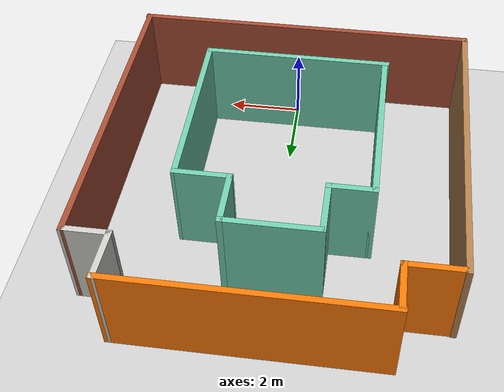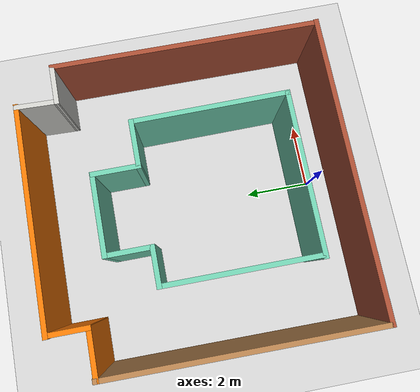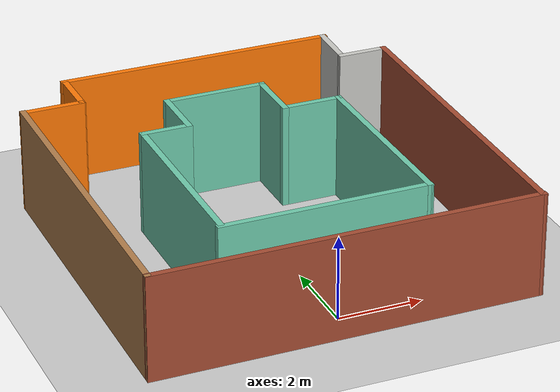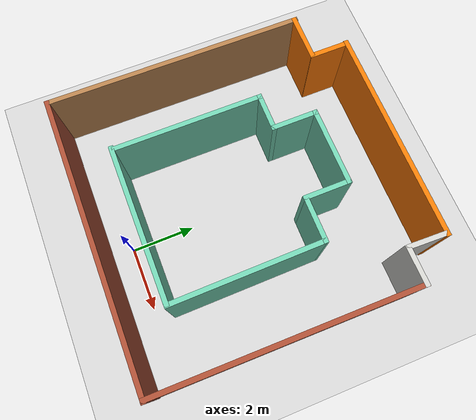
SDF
<sdf version="1.6">
 <world name="default">
  <light name="sun" type="directional">
   <pose>0 0 10 0 -0 0</pose>
   <diffuse>0.8 0.8 0.8 1</diffuse>
   <specular>0.2 0.2 0.2 1</specular>
   <attenuation>
    <range>1000</range>
    <constant>0.9</constant>
    <linear>0.01</linear>
    <quadratic>0.001</quadratic>
   </attenuation>
   <direction>-0.5 0.1 -0.9</direction>
  </light>
  <model name="ground_plane">
   <static>1</static>
   <link name="link">
    <collision name="collision">
     <geometry><plane><normal>0 0 1</normal><size>100 100</size></plane></geometry>
     <surface>
      <contact><collide_bitmask>65535</collide_bitmask></contact>
      <friction><ode><mu>100</mu><mu2>50</mu2></ode></friction>
     </surface>
    </collision>
    <visual name="visual">
     <cast_shadows>0</cast_shadows>
     <geometry><plane><normal>0 0 1</normal><size>100 100</size></plane></geometry>
     <material>
      <script><uri>file://media/materials/scripts/gazebo.material</uri><name>Gazebo/Grey</name></script>
     </material>
    </visual>
   </link>
  </model>
  <gravity>0 0 -9.8</gravity>
  <magnetic_field>6e-06 2.3e-05 -4.2e-05</magnetic_field>
  <atmosphere type="adiabatic"/>
  <physics name="default_physics" default="0" type="ode">
   <max_step_size>0.001</max_step_size>
   <real_time_factor>1</real_time_factor>
   <real_time_update_rate>1000</real_time_update_rate>
  </physics>
  <scene><ambient>0.4 0.4 0.4 1</ambient><background>0.7 0.7 0.7 1</background><shadows>1</shadows></scene>
  <spherical_coordinates>
   <surface_model>EARTH_WGS84</surface_model>
   <latitude_deg>0</latitude_deg>
   <longitude_deg>0</longitude_deg>
   <elevation>0</elevation>
   <heading_deg>0</heading_deg>
  </spherical_coordinates>
  <model name="walls">
   <pose>-0.051443 3.88798 0 0 -0 0</pose>
   <link name="Wall_12">
    <collision name="Wall_12_Collision">
     <geometry><box><size>5 0.15 2.5</size></box></geometry>
     <pose>0 0 1.25 0 -0 0</pose>
    </collision>
    <visual name="Wall_12_Visual">
     <pose>0 0 1.25 0 -0 0</pose>
     <geometry><box><size>5 0.15 2.5</size></box></geometry>
     <material>
      <script><uri>file://media/materials/scripts/gazebo.material</uri><name>Gazebo/Grey</name></script>
      <ambient>0.435294 0.796078 0.67451 1</ambient>
     </material>
     <meta><layer>0</layer></meta>
    </visual>
    <pose>0.011045 -3.29036 0 0 -0 0</pose>
   </link>
   <link name="Wall_13">
    <collision name="Wall_13_Collision">
     <geometry><box><size>4.83464 0.15 2.5</size></box></geometry>
     <pose>0 0 1.25 0 -0 0</pose>
    </collision>
    <visual name="Wall_13_Visual">
     <pose>0 0 1.25 0 -0 0</pose>
     <geometry><box><size>4.83464 0.15 2.5</size></box></geometry>
     <material>
      <script><uri>file://media/materials/scripts/gazebo.material</uri><name>Gazebo/Grey</name></script>
      <ambient>0.435294 0.796078 0.67451 1</ambient>
     </material>
     <meta><layer>0</layer></meta>
    </visual>
    <pose>2.4475 -0.948197 0 0 -0 1.57897</pose>
   </link>
   <link name="Wall_14">
    <collision name="Wall_14_Collision">
     <geometry><box><size>1.5 0.15 2.5</size></box></geometry>
     <pose>0 0 1.25 0 -0 0</pose>
    </collision>
    <visual name="Wall_14_Visual">
     <pose>0 0 1.25 0 -0 0</pose>
     <geometry><box><size>1.5 0.15 2.5</size></box></geometry>
     <material>
      <script><uri>file://media/materials/scripts/gazebo.material</uri><name>Gazebo/Grey</name></script>
      <ambient>0.435294 0.796078 0.67451 1</ambient>
     </material>
     <meta><layer>0</layer></meta>
    </visual>
    <pose>1.75337 1.39397 0 0 -0 3.14159</pose>
   </link>
   <link name="Wall_15">
    <collision name="Wall_15_Collision">
     <geometry><box><size>1.5 0.15 2.5</size></box></geometry>
     <pose>0 0 1.25 0 -0 0</pose>
    </collision>
    <visual name="Wall_15_Visual">
     <pose>0 0 1.25 0 -0 0</pose>
     <geometry><box><size>1.5 0.15 2.5</size></box></geometry>
     <material>
      <script><uri>file://media/materials/scripts/gazebo.material</uri><name>Gazebo/Grey</name></script>
      <ambient>0.435294 0.796078 0.67451 1</ambient>
     </material>
     <meta><layer>0</layer></meta>
    </visual>
    <pose>1.07837 2.06897 0 0 -0 1.5708</pose>
   </link>
   <link name="Wall_16">
    <collision name="Wall_16_Collision">
     <geometry><box><size>2.5 0.15 2.5</size></box></geometry>
     <pose>0 0 1.25 0 -0 0</pose>
    </collision>
    <visual name="Wall_16_Visual">
     <pose>0 0 1.25 0 -0 0</pose>
     <geometry><box><size>2.5 0.15 2.5</size></box></geometry>
     <material>
      <script><uri>file://media/materials/scripts/gazebo.material</uri><name>Gazebo/Grey</name></script>
      <ambient>0.435294 0.796078 0.67451 1</ambient>
     </material>
     <meta><layer>0</layer></meta>
    </visual>
    <pose>-0.096633 2.74397 0 0 -0 3.14159</pose>
   </link>
   <link name="Wall_17">
    <collision name="Wall_17_Collision">
     <geometry><box><size>1.5 0.15 2.5</size></box></geometry>
     <pose>0 0 1.25 0 -0 0</pose>
    </collision>
    <visual name="Wall_17_Visual">
     <pose>0 0 1.25 0 -0 0</pose>
     <geometry><box><size>1.5 0.15 2.5</size></box></geometry>
     <material>
      <script><uri>file://media/materials/scripts/gazebo.material</uri><name>Gazebo/Grey</name></script>
      <ambient>0.435294 0.796078 0.67451 1</ambient>
     </material>
     <meta><layer>0</layer></meta>
    </visual>
    <pose>-1.27163 2.06897 0 0 0 -1.5708</pose>
   </link>
   <link name="Wall_18">
    <collision name="Wall_18_Collision">
     <geometry><box><size>1.25 0.15 2.5</size></box></geometry>
     <pose>0 0 1.25 0 -0 0</pose>
    </collision>
    <visual name="Wall_18_Visual">
     <pose>0 0 1.25 0 -0 0</pose>
     <geometry><box><size>1.25 0.15 2.5</size></box></geometry>
     <material>
      <script><uri>file://media/materials/scripts/gazebo.material</uri><name>Gazebo/Grey</name></script>
      <ambient>0.435294 0.796078 0.67451 1</ambient>
     </material>
     <meta><layer>0</layer></meta>
    </visual>
    <pose>-1.82163 1.39397 0 0 -0 3.14159</pose>
   </link>
   <link name="Wall_19">
    <collision name="Wall_19_Collision">
     <geometry><box><size>4.75 0.15 2.5</size></box></geometry>
     <pose>0 0 1.25 0 -0 0</pose>
    </collision>
    <visual name="Wall_19_Visual">
     <pose>0 0 1.25 0 -0 0</pose>
     <geometry><box><size>4.75 0.15 2.5</size></box></geometry>
     <material>
      <script><uri>file://media/materials/scripts/gazebo.material</uri><name>Gazebo/Grey</name></script>
      <ambient>0.435294 0.796078 0.67451 1</ambient>
     </material>
     <meta><layer>0</layer></meta>
    </visual>
    <pose>-2.37163 -0.906029 0 0 0 -1.5708</pose>
   </link>
   <link name="Wall_22">
    <collision name="Wall_22_Collision">
     <geometry><box><size>9.20726 0.15 2.5</size></box></geometry>
     <pose>0 0 1.25 0 -0 0</pose>
    </collision>
    <visual name="Wall_22_Visual">
     <pose>0 0 1.25 0 -0 0</pose>
     <geometry><box><size>9.20726 0.15 2.5</size></box></geometry>
     <material>
      <script><uri>file://media/materials/scripts/gazebo.material</uri><name>Gazebo/Bricks</name></script>
      <ambient>1 1 1 1</ambient>
     </material>
     <meta><layer>0</layer></meta>
    </visual>
    <pose>-0.011214 -4.64013 0 0 -0 0</pose>
   </link>
   <link name="Wall_23">
    <collision name="Wall_23_Collision">
     <geometry><box><size>8.23429 0.15 2.5</size></box></geometry>
     <pose>0 0 1.25 0 -0 0</pose>
    </collision>
    <visual name="Wall_23_Visual">
     <pose>0 0 1.25 0 -0 0</pose>
     <geometry><box><size>8.23429 0.15 2.5</size></box></geometry>
     <material>
      <script><uri>file://media/materials/scripts/gazebo.material</uri><name>Gazebo/Bricks</name></script>
      <ambient>1 1 1 1</ambient>
     </material>
     <meta><layer>0</layer></meta>
    </visual>
    <pose>4.51707 -0.598044 0 0 -0 1.56516</pose>
   </link>
   <link name="Wall_24">
    <collision name="Wall_24_Collision">
     <geometry><box><size>1.25 0.15 2.5</size></box></geometry>
     <pose>0 0 1.25 0 -0 0</pose>
    </collision>
    <visual name="Wall_24_Visual">
     <pose>0 0 1.25 0 -0 0</pose>
     <geometry><box><size>1.25 0.15 2.5</size></box></geometry>
     <material>
      <script><uri>file://media/materials/scripts/gazebo.material</uri><name>Gazebo/CeilingTiled</name></script>
      <ambient>1 1 1 1</ambient>
     </material>
     <meta><layer>0</layer></meta>
    </visual>
    <pose>3.98987 3.44404 0 0 -0 3.14159</pose>
   </link>
   <link name="Wall_25">
    <collision name="Wall_25_Collision">
     <geometry><box><size>1.31413 0.15 2.5</size></box></geometry>
     <pose>0 0 1.25 0 -0 0</pose>
    </collision>
    <visual name="Wall_25_Visual">
     <pose>0 0 1.25 0 -0 0</pose>
     <geometry><box><size>1.31413 0.15 2.5</size></box></geometry>
     <material>
      <script><uri>file://media/materials/scripts/gazebo.material</uri><name>Gazebo/CeilingTiled</name></script>
      <ambient>1 1 1 1</ambient>
     </material>
     <meta><layer>0</layer></meta>
    </visual>
    <pose>3.45889 4.05638 0 0 -0 1.53811</pose>
   </link>
   <link name="Wall_26">
    <collision name="Wall_26_Collision">
     <geometry><box><size>6.76775 0.15 2.5</size></box></geometry>
     <pose>0 0 1.25 0 -0 0</pose>
    </collision>
    <visual name="Wall_26_Visual">
     <pose>0 0 1.25 0 -0 0</pose>
     <geometry><box><size>6.76775 0.15 2.5</size></box></geometry>
     <material>
      <script><uri>file://media/materials/scripts/gazebo.material</uri><name>Gazebo/Grey</name></script>
      <ambient>0.996078 0.47451 0.0196078 1</ambient>
     </material>
     <meta><layer>0</layer></meta>
    </visual>
    <pose>0.192176 4.63814 0 0 -0 3.14159</pose>
   </link>
   <link name="Wall_27">
    <collision name="Wall_27_Collision">
     <geometry><box><size>1.32827 0.15 2.5</size></box></geometry>
     <pose>0 0 1.25 0 -0 0</pose>
    </collision>
    <visual name="Wall_27_Visual">
     <pose>0 0 1.25 0 -0 0</pose>
     <geometry><box><size>1.32827 0.15 2.5</size></box></geometry>
     <material>
      <script><uri>file://media/materials/scripts/gazebo.material</uri><name>Gazebo/Grey</name></script>
      <ambient>0.996078 0.47451 0.0196078 1</ambient>
     </material>
     <meta><layer>0</layer></meta>
    </visual>
    <pose>-3.09357 4.04901 0 0 0 -1.5708</pose>
   </link>
   <link name="Wall_28">
    <collision name="Wall_28_Collision">
     <geometry><box><size>1.52313 0.15 2.5</size></box></geometry>
     <pose>0 0 1.25 0 -0 0</pose>
    </collision>
    <visual name="Wall_28_Visual">
     <pose>0 0 1.25 0 -0 0</pose>
     <geometry><box><size>1.52313 0.15 2.5</size></box></geometry>
     <material>
      <script><uri>file://media/materials/scripts/gazebo.material</uri><name>Gazebo/Grey</name></script>
      <ambient>0.996078 0.47451 0.0196078 1</ambient>
     </material>
     <meta><layer>0</layer></meta>
    </visual>
    <pose>-3.80326 3.45987 0 0 0 -3.14159</pose>
   </link>
   <link name="Wall_29">
    <collision name="Wall_29_Collision">
     <geometry><box><size>8.25015 0.15 2.5</size></box></geometry>
     <pose>0 0 1.25 0 -0 0</pose>
    </collision>
    <visual name="Wall_29_Visual">
     <pose>0 0 1.25 0 -0 0</pose>
     <geometry><box><size>8.25015 0.15 2.5</size></box></geometry>
     <material>
      <script><uri>file://media/materials/scripts/gazebo.material</uri><name>Gazebo/Wood</name></script>
      <ambient>1 1 1 1</ambient>
     </material>
     <meta><layer>0</layer></meta>
    </visual>
    <pose>-4.51483 -0.566997 0 0 0 -1.57697</pose>
   </link>
   <static>1</static>
  </model>
 </world>
</sdf>
